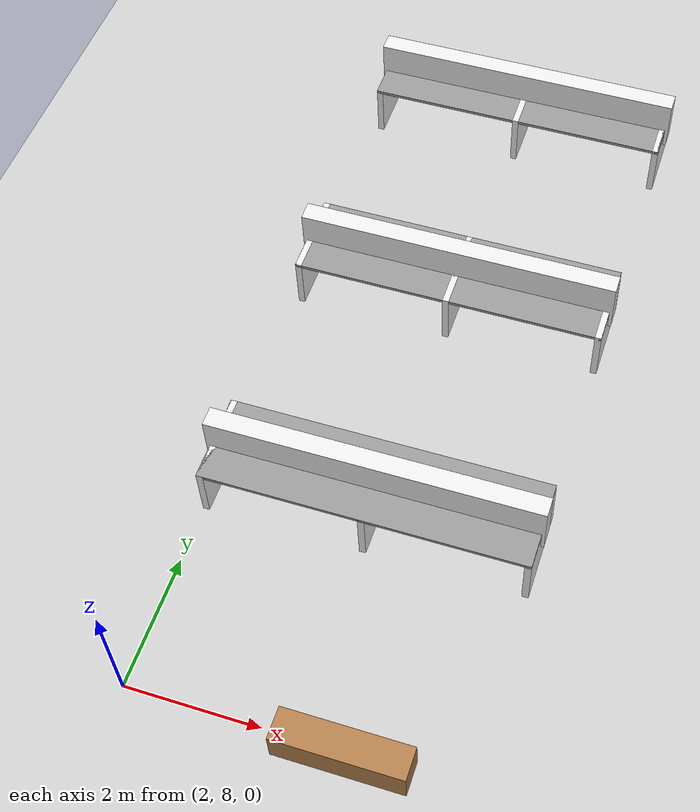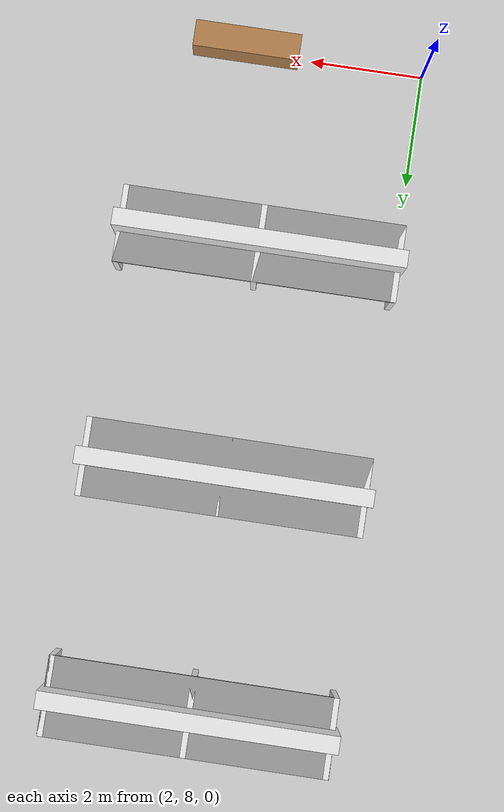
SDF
<sdf version="1.5">
 <world name="default">
  <physics name="default_physics" default="0" type="ode">
   <gravity>0 0 -9.8066</gravity>
   <ode>
    <solver>
     <type>quick</type>
     <iters>10</iters>
     <sor>1.3</sor>
     <use_dynamic_moi_rescaling>0</use_dynamic_moi_rescaling>
    </solver>
    <constraints>
     <cfm>0</cfm>
     <erp>0.2</erp>
     <contact_max_correcting_vel>1000</contact_max_correcting_vel>
     <contact_surface_layer>0.001</contact_surface_layer>
    </constraints>
   </ode>
   <max_step_size>0.004</max_step_size>
   <real_time_factor>1</real_time_factor>
   <real_time_update_rate>250</real_time_update_rate>
   <magnetic_field>6.0e-06 2.3e-05 -4.2e-05</magnetic_field>
  </physics>
  <GUI name="default_gri" default="0" type="ode"><grid>45 1.0 0 0.0150</grid></GUI>
  <scene><shadows>true</shadows></scene>
  <light name="sun" type="directional">
   <pose>0 0 10000 0.4 0.2 0</pose>
   <diffuse>1 1 1 1</diffuse>
   <specular>0.6 0.6 0.6 1</specular>
   <direction>0.1 0.1 -0.9</direction>
   <attenuation>
    <range>20</range>
    <constant>0.5</constant>
    <linear>0.01</linear>
    <quadratic>0.001</quadratic>
   </attenuation>
  </light>
  <include><uri>model://ground_plane</uri></include>
  <model name="labBenchs"><include><uri>model://labBench-laser</uri></include></model>
 </world>
</sdf>

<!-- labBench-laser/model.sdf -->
<sdf version="1.5">
    <model name="benchs">
        <static>true</static>

        <!-- obj12.1 -->
        <link name="white_hori_1">
            <pose>4.423 19.633 1 0 0 0</pose>
            <static>true</static>
            <inertial>
                <mass>1.0</mass>
                <inertia>
                    <!-- inertias are tricky to compute -->
                    <ixx>1</ixx> <!-- for a box: ixx = 0.083 * mass * (y*y + z*z) -->
                    <ixy>0</ixy> <!-- for a box: ixy = 0 -->
                    <ixz>0</ixz> <!-- for a box: ixz = 0 -->
                    <iyy>1</iyy> <!-- for a box: iyy = 0.083 * mass * (x*x + z*z) -->
                    <iyz>0</iyz> <!-- for a box: iyz = 0 -->
                    <izz>1</izz> <!-- for a box: izz = 0.083 * mass * (x*x + y*y) -->
                </inertia>
            </inertial>
            <collision name="collision">
                <geometry>
                    <box>
                        <size>5 0.3 0.85</size>
                    </box>
                </geometry>
            </collision>
            <visual name="visual">
                <geometry>
                    <box>
                        <size>5 0.3 0.85</size>
                    </box>
                </geometry>
                <material>
                    <script>
                        <uri>file://usr/share/gazebo-11/media/materials/scripts/gazebo.material</uri>
                        <name>Gazebo/White</name>
                    </script>
                </material>
            </visual>
        </link>

        <link name="grani_hori_1">
            <pose>4.423 19.633 0.875 0 0 0</pose>
            <static>true</static>
            <inertial>
                <mass>1.0</mass>
                <inertia>
                    <!-- inertias are tricky to compute -->
                    <ixx>1</ixx> <!-- for a box: ixx = 0.083 * mass * (y*y + z*z) -->
                    <ixy>0</ixy> <!-- for a box: ixy = 0 -->
                    <ixz>0</ixz> <!-- for a box: ixz = 0 -->
                    <iyy>1</iyy> <!-- for a box: iyy = 0.083 * mass * (x*x + z*z) -->
                    <iyz>0</iyz> <!-- for a box: iyz = 0 -->
                    <izz>1</izz> <!-- for a box: izz = 0.083 * mass * (x*x + y*y) -->
                </inertia>
            </inertial>
            <collision name="collision">
                <geometry>
                    <box>
                        <size>4.9 1.35 0.05</size>
                    </box>
                </geometry>
            </collision>
            <visual name="visual">
                <geometry>
                    <box>
                        <size>4.9 1.35 0.05</size>
                    </box>
                </geometry>
                <material>
                    <script>
                        <uri>file://usr/share/gazebo-11/media/materials/scripts/gazebo.material</uri>
                        <name>Gazebo/Grey</name>
                    </script>
                </material>
            </visual>
        </link>

        <link name="white_verti_1">
            <pose>2.023 19.633 0.45 0 0 0</pose>
            <static>true</static>
            <inertial>
                <mass>1.0</mass>
                <inertia>
                    <!-- inertias are tricky to compute -->
                    <ixx>1</ixx> <!-- for a box: ixx = 0.083 * mass * (y*y + z*z) -->
                    <ixy>0</ixy> <!-- for a box: ixy = 0 -->
                    <ixz>0</ixz> <!-- for a box: ixz = 0 -->
                    <iyy>1</iyy> <!-- for a box: iyy = 0.083 * mass * (x*x + z*z) -->
                    <iyz>0</iyz> <!-- for a box: iyz = 0 -->
                    <izz>1</izz> <!-- for a box: izz = 0.083 * mass * (x*x + y*y) -->
                </inertia>
            </inertial>
            <collision name="collision">
                <geometry>
                    <box>
                        <size>0.1 1.35 0.9</size>
                    </box>
                </geometry>
            </collision>
            <visual name="visual">
                <geometry>
                    <box>
                        <size>0.1 1.35 0.9</size>
                    </box>
                </geometry>
                <material>
                    <script>
                        <uri>file://usr/share/gazebo-11/media/materials/scripts/gazebo.material</uri>
                        <name>Gazebo/White</name>
                    </script>
                </material>
            </visual>
        </link>

        <link name="white_verti_2">
            <pose>4.423 19.633 0.45 0 0 0</pose>
            <static>true</static>
            <inertial>
                <mass>1.0</mass>
                <inertia>
                    <!-- inertias are tricky to compute -->
                    <ixx>1</ixx> <!-- for a box: ixx = 0.083 * mass * (y*y + z*z) -->
                    <ixy>0</ixy> <!-- for a box: ixy = 0 -->
                    <ixz>0</ixz> <!-- for a box: ixz = 0 -->
                    <iyy>1</iyy> <!-- for a box: iyy = 0.083 * mass * (x*x + z*z) -->
                    <iyz>0</iyz> <!-- for a box: iyz = 0 -->
                    <izz>1</izz> <!-- for a box: izz = 0.083 * mass * (x*x + y*y) -->
                </inertia>
            </inertial>
            <collision name="collision">
                <geometry>
                    <box>
                        <size>0.1 1.35 0.9</size>
                    </box>
                </geometry>
            </collision>
            <visual name="visual">
                <geometry>
                    <box>
                        <size>0.1 1.35 0.9</size>
                    </box>
                </geometry>
                <material>
                    <script>
                        <uri>file://usr/share/gazebo-11/media/materials/scripts/gazebo.material</uri>
                        <name>Gazebo/White</name>
                    </script>
                </material>
            </visual>
        </link>

        <link name="white_verti_3">
            <pose>6.823 19.633 0.45 0 0 0</pose>
            <static>true</static>
            <inertial>
                <mass>1.0</mass>
                <inertia>
                    <!-- inertias are tricky to compute -->
                    <ixx>1</ixx> <!-- for a box: ixx = 0.083 * mass * (y*y + z*z) -->
                    <ixy>0</ixy> <!-- for a box: ixy = 0 -->
                    <ixz>0</ixz> <!-- for a box: ixz = 0 -->
                    <iyy>1</iyy> <!-- for a box: iyy = 0.083 * mass * (x*x + z*z) -->
                    <iyz>0</iyz> <!-- for a box: iyz = 0 -->
                    <izz>1</izz> <!-- for a box: izz = 0.083 * mass * (x*x + y*y) -->
                </inertia>
            </inertial>
            <collision name="collision">
                <geometry>
                    <box>
                        <size>0.1 1.35 0.9</size>
                    </box>
                </geometry>
            </collision>
            <visual name="visual">
                <geometry>
                    <box>
                        <size>0.1 1.35 0.9</size>
                    </box>
                </geometry>
                <material>
                    <script>
                        <uri>file://usr/share/gazebo-11/media/materials/scripts/gazebo.material</uri>
                        <name>Gazebo/White</name>
                    </script>
                </material>
            </visual>
        </link>

        <!-- obj12.2 -->
        <link name="white_hori_2">
            <pose>4.423 15.603 1 0 0 0</pose>
            <static>true</static>
            <inertial>
                <mass>1.0</mass>
                <inertia>
                    <!-- inertias are tricky to compute -->
                    <ixx>1</ixx> <!-- for a box: ixx = 0.083 * mass * (y*y + z*z) -->
                    <ixy>0</ixy> <!-- for a box: ixy = 0 -->
                    <ixz>0</ixz> <!-- for a box: ixz = 0 -->
                    <iyy>1</iyy> <!-- for a box: iyy = 0.083 * mass * (x*x + z*z) -->
                    <iyz>0</iyz> <!-- for a box: iyz = 0 -->
                    <izz>1</izz> <!-- for a box: izz = 0.083 * mass * (x*x + y*y) -->
                </inertia>
            </inertial>
            <collision name="collision">
                <geometry>
                    <box>
                        <size>5 0.3 0.85</size>
                    </box>
                </geometry>
            </collision>
            <visual name="visual">
                <geometry>
                    <box>
                        <size>5 0.3 0.85</size>
                    </box>
                </geometry>
                <material>
                    <script>
                        <uri>file://usr/share/gazebo-11/media/materials/scripts/gazebo.material</uri>
                        <name>Gazebo/White</name>
                    </script>
                </material>
            </visual>
        </link>

        <link name="grani_hori_2">
            <pose>4.423 15.603 0.875 0 0 0</pose>
            <static>true</static>
            <inertial>
                <mass>1.0</mass>
                <inertia>
                    <!-- inertias are tricky to compute -->
                    <ixx>1</ixx> <!-- for a box: ixx = 0.083 * mass * (y*y + z*z) -->
                    <ixy>0</ixy> <!-- for a box: ixy = 0 -->
                    <ixz>0</ixz> <!-- for a box: ixz = 0 -->
                    <iyy>1</iyy> <!-- for a box: iyy = 0.083 * mass * (x*x + z*z) -->
                    <iyz>0</iyz> <!-- for a box: iyz = 0 -->
                    <izz>1</izz> <!-- for a box: izz = 0.083 * mass * (x*x + y*y) -->
                </inertia>
            </inertial>
            <collision name="collision">
                <geometry>
                    <box>
                        <size>4.9 1.35 0.05</size>
                    </box>
                </geometry>
            </collision>
            <visual name="visual">
                <geometry>
                    <box>
                        <size>4.9 1.35 0.05</size>
                    </box>
                </geometry>
                <material>
                    <script>
                        <uri>file://usr/share/gazebo-11/media/materials/scripts/gazebo.material</uri>
                        <name>Gazebo/Grey</name>
                    </script>
                </material>
            </visual>
        </link>

        <link name="white_verti_4">
            <pose>2.023 15.603 0.45 0 0 0</pose>
            <static>true</static>
            <inertial>
                <mass>1.0</mass>
                <inertia>
                    <!-- inertias are tricky to compute -->
                    <ixx>1</ixx> <!-- for a box: ixx = 0.083 * mass * (y*y + z*z) -->
                    <ixy>0</ixy> <!-- for a box: ixy = 0 -->
                    <ixz>0</ixz> <!-- for a box: ixz = 0 -->
                    <iyy>1</iyy> <!-- for a box: iyy = 0.083 * mass * (x*x + z*z) -->
                    <iyz>0</iyz> <!-- for a box: iyz = 0 -->
                    <izz>1</izz> <!-- for a box: izz = 0.083 * mass * (x*x + y*y) -->
                </inertia>
            </inertial>
            <collision name="collision">
                <geometry>
                    <box>
                        <size>0.1 1.35 0.9</size>
                    </box>
                </geometry>
            </collision>
            <visual name="visual">
                <geometry>
                    <box>
                        <size>0.1 1.35 0.9</size>
                    </box>
                </geometry>
                <material>
                    <script>
                        <uri>file://usr/share/gazebo-11/media/materials/scripts/gazebo.material</uri>
                        <name>Gazebo/White</name>
                    </script>
                </material>
            </visual>
        </link>

        <link name="white_verti_5">
            <pose>4.423 15.603 0.45 0 0 0</pose>
            <static>true</static>
            <inertial>
                <mass>1.0</mass>
                <inertia>
                    <!-- inertias are tricky to compute -->
                    <ixx>1</ixx> <!-- for a box: ixx = 0.083 * mass * (y*y + z*z) -->
                    <ixy>0</ixy> <!-- for a box: ixy = 0 -->
                    <ixz>0</ixz> <!-- for a box: ixz = 0 -->
                    <iyy>1</iyy> <!-- for a box: iyy = 0.083 * mass * (x*x + z*z) -->
                    <iyz>0</iyz> <!-- for a box: iyz = 0 -->
                    <izz>1</izz> <!-- for a box: izz = 0.083 * mass * (x*x + y*y) -->
                </inertia>
            </inertial>
            <collision name="collision">
                <geometry>
                    <box>
                        <size>0.1 1.35 0.9</size>
                    </box>
                </geometry>
            </collision>
            <visual name="visual">
                <geometry>
                    <box>
                        <size>0.1 1.35 0.9</size>
                    </box>
                </geometry>
                <material>
                    <script>
                        <uri>file://usr/share/gazebo-11/media/materials/scripts/gazebo.material</uri>
                        <name>Gazebo/White</name>
                    </script>
                </material>
            </visual>
        </link>

        <link name="white_verti_6">
            <pose>6.823 15.603 0.45 0 0 0</pose>
            <static>true</static>
            <inertial>
                <mass>1.0</mass>
                <inertia>
                    <!-- inertias are tricky to compute -->
                    <ixx>1</ixx> <!-- for a box: ixx = 0.083 * mass * (y*y + z*z) -->
                    <ixy>0</ixy> <!-- for a box: ixy = 0 -->
                    <ixz>0</ixz> <!-- for a box: ixz = 0 -->
                    <iyy>1</iyy> <!-- for a box: iyy = 0.083 * mass * (x*x + z*z) -->
                    <iyz>0</iyz> <!-- for a box: iyz = 0 -->
                    <izz>1</izz> <!-- for a box: izz = 0.083 * mass * (x*x + y*y) -->
                </inertia>
            </inertial>
            <collision name="collision">
                <geometry>
                    <box>
                        <size>0.1 1.35 0.9</size>
                    </box>
                </geometry>
            </collision>
            <visual name="visual">
                <geometry>
                    <box>
                        <size>0.1 1.35 0.9</size>
                    </box>
                </geometry>
                <material>
                    <script>
                        <uri>file://usr/share/gazebo-11/media/materials/scripts/gazebo.material</uri>
                        <name>Gazebo/White</name>
                    </script>
                </material>
            </visual>
        </link>

        <!-- obj12.3 -->
        <link name="white_hori_3">
            <pose>4.423 11.573 1 0 0 0</pose>
            <static>true</static>
            <inertial>
                <mass>1.0</mass>
                <inertia>
                    <!-- inertias are tricky to compute -->
                    <ixx>1</ixx> <!-- for a box: ixx = 0.083 * mass * (y*y + z*z) -->
                    <ixy>0</ixy> <!-- for a box: ixy = 0 -->
                    <ixz>0</ixz> <!-- for a box: ixz = 0 -->
                    <iyy>1</iyy> <!-- for a box: iyy = 0.083 * mass * (x*x + z*z) -->
                    <iyz>0</iyz> <!-- for a box: iyz = 0 -->
                    <izz>1</izz> <!-- for a box: izz = 0.083 * mass * (x*x + y*y) -->
                </inertia>
            </inertial>
            <collision name="collision">
                <geometry>
                    <box>
                        <size>5 0.3 0.85</size>
                    </box>
                </geometry>
            </collision>
            <visual name="visual">
                <geometry>
                    <box>
                        <size>5 0.3 0.85</size>
                    </box>
                </geometry>
                <material>
                    <script>
                        <uri>file://usr/share/gazebo-11/media/materials/scripts/gazebo.material</uri>
                        <name>Gazebo/White</name>
                    </script>
                </material>
            </visual>
        </link>

        <link name="grani_hori_3">
            <pose>4.423 11.573 0.875 0 0 0</pose>
            <static>true</static>
            <inertial>
                <mass>1.0</mass>
                <inertia>
                    <!-- inertias are tricky to compute -->
                    <ixx>1</ixx> <!-- for a box: ixx = 0.083 * mass * (y*y + z*z) -->
                    <ixy>0</ixy> <!-- for a box: ixy = 0 -->
                    <ixz>0</ixz> <!-- for a box: ixz = 0 -->
                    <iyy>1</iyy> <!-- for a box: iyy = 0.083 * mass * (x*x + z*z) -->
                    <iyz>0</iyz> <!-- for a box: iyz = 0 -->
                    <izz>1</izz> <!-- for a box: izz = 0.083 * mass * (x*x + y*y) -->
                </inertia>
            </inertial>
            <collision name="collision">
                <geometry>
                    <box>
                        <size>4.9 1.35 0.05</size>
                    </box>
                </geometry>
            </collision>
            <visual name="visual">
                <geometry>
                    <box>
                        <size>4.9 1.35 0.05</size>
                    </box>
                </geometry>
                <material>
                    <script>
                        <uri>file://usr/share/gazebo-11/media/materials/scripts/gazebo.material</uri>
                        <name>Gazebo/Grey</name>
                    </script>
                </material>
            </visual>
        </link>

        <link name="white_verti_7">
            <pose>2.023 11.573 0.45 0 0 0</pose>
            <static>true</static>
            <inertial>
                <mass>1.0</mass>
                <inertia>
                    <!-- inertias are tricky to compute -->
                    <ixx>1</ixx> <!-- for a box: ixx = 0.083 * mass * (y*y + z*z) -->
                    <ixy>0</ixy> <!-- for a box: ixy = 0 -->
                    <ixz>0</ixz> <!-- for a box: ixz = 0 -->
                    <iyy>1</iyy> <!-- for a box: iyy = 0.083 * mass * (x*x + z*z) -->
                    <iyz>0</iyz> <!-- for a box: iyz = 0 -->
                    <izz>1</izz> <!-- for a box: izz = 0.083 * mass * (x*x + y*y) -->
                </inertia>
            </inertial>
            <collision name="collision">
                <geometry>
                    <box>
                        <size>0.1 1.35 0.9</size>
                    </box>
                </geometry>
            </collision>
            <visual name="visual">
                <geometry>
                    <box>
                        <size>0.1 1.35 0.9</size>
                    </box>
                </geometry>
                <material>
                    <script>
                        <uri>file://usr/share/gazebo-11/media/materials/scripts/gazebo.material</uri>
                        <name>Gazebo/White</name>
                    </script>
                </material>
            </visual>
        </link>

        <link name="white_verti_8">
            <pose>4.423 11.573 0.45 0 0 0</pose>
            <static>true</static>
            <inertial>
                <mass>1.0</mass>
                <inertia>
                    <!-- inertias are tricky to compute -->
                    <ixx>1</ixx> <!-- for a box: ixx = 0.083 * mass * (y*y + z*z) -->
                    <ixy>0</ixy> <!-- for a box: ixy = 0 -->
                    <ixz>0</ixz> <!-- for a box: ixz = 0 -->
                    <iyy>1</iyy> <!-- for a box: iyy = 0.083 * mass * (x*x + z*z) -->
                    <iyz>0</iyz> <!-- for a box: iyz = 0 -->
                    <izz>1</izz> <!-- for a box: izz = 0.083 * mass * (x*x + y*y) -->
                </inertia>
            </inertial>
            <collision name="collision">
                <geometry>
                    <box>
                        <size>0.1 1.35 0.9</size>
                    </box>
                </geometry>
            </collision>
            <visual name="visual">
                <geometry>
                    <box>
                        <size>0.1 1.35 0.9</size>
                    </box>
                </geometry>
                <material>
                    <script>
                        <uri>file://usr/share/gazebo-11/media/materials/scripts/gazebo.material</uri>
                        <name>Gazebo/White</name>
                    </script>
                </material>
            </visual>
        </link>

        <link name="white_verti_9">
            <pose>6.823 11.573 0.45 0 0 0</pose>
            <static>true</static>
            <inertial>
                <mass>1.0</mass>
                <inertia>
                    <!-- inertias are tricky to compute -->
                    <ixx>1</ixx> <!-- for a box: ixx = 0.083 * mass * (y*y + z*z) -->
                    <ixy>0</ixy> <!-- for a box: ixy = 0 -->
                    <ixz>0</ixz> <!-- for a box: ixz = 0 -->
                    <iyy>1</iyy> <!-- for a box: iyy = 0.083 * mass * (x*x + z*z) -->
                    <iyz>0</iyz> <!-- for a box: iyz = 0 -->
                    <izz>1</izz> <!-- for a box: izz = 0.083 * mass * (x*x + y*y) -->
                </inertia>
            </inertial>
            <collision name="collision">
                <geometry>
                    <box>
                        <size>0.1 1.35 0.9</size>
                    </box>
                </geometry>
            </collision>
            <visual name="visual">
                <geometry>
                    <box>
                        <size>0.1 1.35 0.9</size>
                    </box>
                </geometry>
                <material>
                    <script>
                        <uri>file://usr/share/gazebo-11/media/materials/scripts/gazebo.material</uri>
                        <name>Gazebo/White</name>
                    </script>
                </material>
            </visual>
        </link>

        <!-- banco da vsoft -->
        <link name="obj11">
            <pose>5.1645 7.942 0.235 0 0 0</pose>
            <static>true</static>
            <inertial>
                <mass>1.0</mass>
                <inertia>
                    <!-- inertias are tricky to compute -->
                    <ixx>1</ixx> <!-- for a box: ixx = 0.083 * mass * (y*y + z*z) -->
                    <ixy>0</ixy> <!-- for a box: ixy = 0 -->
                    <ixz>0</ixz> <!-- for a box: ixz = 0 -->
                    <iyy>1</iyy> <!-- for a box: iyy = 0.083 * mass * (x*x + z*z) -->
                    <iyz>0</iyz> <!-- for a box: iyz = 0 -->
                    <izz>1</izz> <!-- for a box: izz = 0.083 * mass * (x*x + y*y) -->
                </inertia>
            </inertial>
            <collision name="collision">
                <geometry>
                    <box>
                        <size>1.885 0.47 0.555</size>
                    </box>
                </geometry>
            </collision>
            <visual name="visual">
                <geometry>
                    <box>
                        <size>1.885 0.47 0.555</size>
                    </box>
                </geometry>
                <material>
                    <script>
                        <uri>file://usr/share/gazebo-11/media/materials/scripts/gazebo.material</uri>
                        <name>Gazebo/Wood</name>
                    </script>
                </material>
            </visual>
        </link>

    </model>
</sdf>
